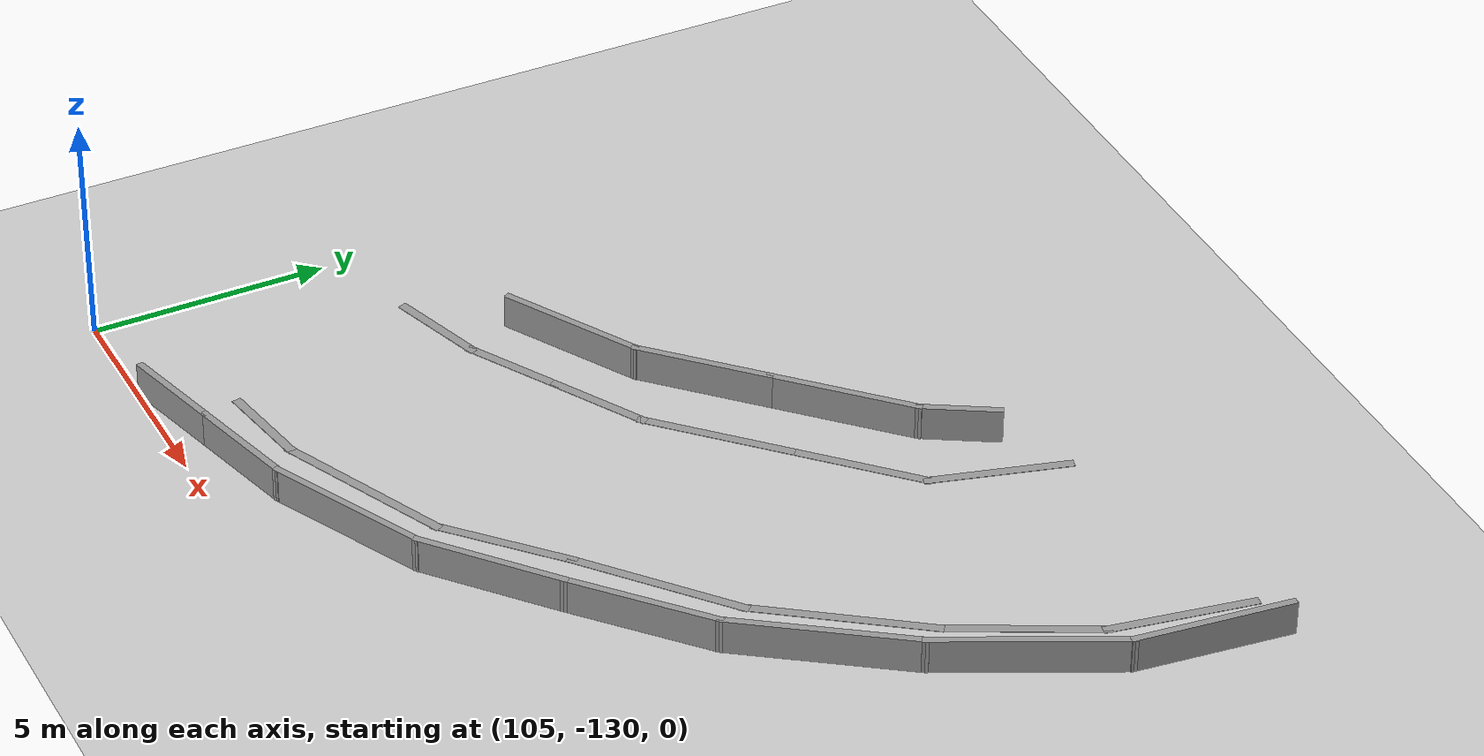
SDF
<sdf version="1.6">
 <world name="default">
  <model name="ground_plane">
   <static>1</static>
   <link name="link">
    <collision name="collision">
     <geometry><plane><normal>0 0 1</normal><size>100 100</size></plane></geometry>
     <surface>
      <contact><collide_bitmask>65535</collide_bitmask></contact>
      <friction><ode><mu>100</mu><mu2>50</mu2></ode></friction>
     </surface>
    </collision>
    <visual name="visual">
     <cast_shadows>0</cast_shadows>
     <geometry><plane><normal>0 0 1</normal><size>100 100</size></plane></geometry>
     <material>
      <script><uri>file://media/materials/scripts/gazebo.material</uri><name>Gazebo/Grey</name></script>
     </material>
    </visual>
   </link>
  </model>
  <model name="GercekDuvarSeritKoyu1">
   <link name="Wall_173">
    <pose>66.9071 49.8209 0 0 -0 2.09434</pose>
    <inertial>
     <mass>1</mass>
     <inertia><ixx>1</ixx><ixy>0</ixy><ixz>0</ixz><iyy>1</iyy><iyz>0</iyz><izz>1</izz></inertia>
    </inertial>
    <visual name="Wall_173_Visual">
     <pose>0 0 0.375 0 -0 0</pose>
     <geometry><box><size>3.25 0.15 0.75</size></box></geometry>
     <material>
      <script><uri>file://media/materials/scripts/gazebo.material</uri><name>Gazebo/Grey</name></script>
      <ambient>0.5 0.5 0.5 1</ambient>
      <shader type="pixel"><normal_map>__default__</normal_map></shader>
      <diffuse>0.7 0.7 0.7 1</diffuse>
      <specular>0.01 0.01 0.01 1</specular>
      <emissive>0 0 0 1</emissive>
     </material>
     <meta><layer>0</layer></meta>
    </visual>
    <collision name="Wall_173_Collision">
     <pose>0 0 0.375 0 -0 0</pose>
     <geometry><box><size>3.25 0.15 0.75</size></box></geometry>
     <surface>
      <friction>
       <ode><mu>1</mu><mu2>1</mu2><fdir1>0 0 0</fdir1><slip1>0</slip1><slip2>0</slip2></ode>
       <torsional>
        <coefficient>1</coefficient>
        <patch_radius>0</patch_radius>
        <surface_radius>0</surface_radius>
        <use_patch_radius>1</use_patch_radius>
        <ode><slip>0</slip></ode>
       </torsional>
      </friction>
      <bounce><restitution_coefficient>0</restitution_coefficient><threshold>1e+06</threshold></bounce>
      <contact>
       <collide_without_contact>0</collide_without_contact>
       <collide_without_contact_bitmask>1</collide_without_contact_bitmask>
       <collide_bitmask>1</collide_bitmask>
       <ode>
        <soft_cfm>0</soft_cfm>
        <soft_erp>0.2</soft_erp>
        <kp>1e+13</kp>
        <kd>1</kd>
        <max_vel>0.01</max_vel>
        <min_depth>0</min_depth>
       </ode>
       <bullet>
        <split_impulse>1</split_impulse>
        <split_impulse_penetration_threshold>-0.01</split_impulse_penetration_threshold>
        <soft_cfm>0</soft_cfm>
        <soft_erp>0.2</soft_erp>
        <kp>1e+13</kp>
        <kd>1</kd>
       </bullet>
      </contact>
     </surface>
    </collision>
   </link>
   <link name="Wall_174">
    <pose>65.1246 52.1709 0 0 -0 2.35619</pose>
    <inertial>
     <mass>1</mass>
     <inertia><ixx>1</ixx><ixy>0</ixy><ixz>0</ixz><iyy>1</iyy><iyz>0</iyz><izz>1</izz></inertia>
    </inertial>
    <visual name="Wall_174_Visual">
     <pose>0 0 0.375 0 -0 0</pose>
     <geometry><box><size>3 0.15 0.75</size></box></geometry>
     <material>
      <script><uri>file://media/materials/scripts/gazebo.material</uri><name>Gazebo/Grey</name></script>
      <ambient>0.5 0.5 0.5 1</ambient>
      <shader type="pixel"><normal_map>__default__</normal_map></shader>
      <diffuse>0.7 0.7 0.7 1</diffuse>
      <specular>0.01 0.01 0.01 1</specular>
      <emissive>0 0 0 1</emissive>
     </material>
     <meta><layer>0</layer></meta>
    </visual>
    <collision name="Wall_174_Collision">
     <pose>0 0 0.375 0 -0 0</pose>
     <geometry><box><size>3 0.15 0.75</size></box></geometry>
     <surface>
      <friction>
       <ode><mu>1</mu><mu2>1</mu2><fdir1>0 0 0</fdir1><slip1>0</slip1><slip2>0</slip2></ode>
       <torsional>
        <coefficient>1</coefficient>
        <patch_radius>0</patch_radius>
        <surface_radius>0</surface_radius>
        <use_patch_radius>1</use_patch_radius>
        <ode><slip>0</slip></ode>
       </torsional>
      </friction>
      <bounce><restitution_coefficient>0</restitution_coefficient><threshold>1e+06</threshold></bounce>
      <contact>
       <collide_without_contact>0</collide_without_contact>
       <collide_without_contact_bitmask>1</collide_without_contact_bitmask>
       <collide_bitmask>1</collide_bitmask>
       <ode>
        <soft_cfm>0</soft_cfm>
        <soft_erp>0.2</soft_erp>
        <kp>1e+13</kp>
        <kd>1</kd>
        <max_vel>0.01</max_vel>
        <min_depth>0</min_depth>
       </ode>
       <bullet>
        <split_impulse>1</split_impulse>
        <split_impulse_penetration_threshold>-0.01</split_impulse_penetration_threshold>
        <soft_cfm>0</soft_cfm>
        <soft_erp>0.2</soft_erp>
        <kp>1e+13</kp>
        <kd>1</kd>
       </bullet>
      </contact>
     </surface>
    </collision>
   </link>
   <link name="Wall_175">
    <pose>63.0211 54.2744 0 0 -0 2.35619</pose>
    <inertial>
     <mass>1</mass>
     <inertia><ixx>1</ixx><ixy>0</ixy><ixz>0</ixz><iyy>1</iyy><iyz>0</iyz><izz>1</izz></inertia>
    </inertial>
    <visual name="Wall_175_Visual">
     <pose>0 0 0.375 0 -0 0</pose>
     <geometry><box><size>3.25 0.15 0.75</size></box></geometry>
     <material>
      <script><uri>file://media/materials/scripts/gazebo.material</uri><name>Gazebo/Grey</name></script>
      <ambient>0.5 0.5 0.5 1</ambient>
      <shader type="pixel"><normal_map>__default__</normal_map></shader>
      <diffuse>0.7 0.7 0.7 1</diffuse>
      <specular>0.01 0.01 0.01 1</specular>
      <emissive>0 0 0 1</emissive>
     </material>
     <meta><layer>0</layer></meta>
    </visual>
    <collision name="Wall_175_Collision">
     <pose>0 0 0.375 0 -0 0</pose>
     <geometry><box><size>3.25 0.15 0.75</size></box></geometry>
     <surface>
      <friction>
       <ode><mu>1</mu><mu2>1</mu2><fdir1>0 0 0</fdir1><slip1>0</slip1><slip2>0</slip2></ode>
       <torsional>
        <coefficient>1</coefficient>
        <patch_radius>0</patch_radius>
        <surface_radius>0</surface_radius>
        <use_patch_radius>1</use_patch_radius>
        <ode><slip>0</slip></ode>
       </torsional>
      </friction>
      <bounce><restitution_coefficient>0</restitution_coefficient><threshold>1e+06</threshold></bounce>
      <contact>
       <collide_without_contact>0</collide_without_contact>
       <collide_without_contact_bitmask>1</collide_without_contact_bitmask>
       <collide_bitmask>1</collide_bitmask>
       <ode>
        <soft_cfm>0</soft_cfm>
        <soft_erp>0.2</soft_erp>
        <kp>1e+13</kp>
        <kd>1</kd>
        <max_vel>0.01</max_vel>
        <min_depth>0</min_depth>
       </ode>
       <bullet>
        <split_impulse>1</split_impulse>
        <split_impulse_penetration_threshold>-0.01</split_impulse_penetration_threshold>
        <soft_cfm>0</soft_cfm>
        <soft_erp>0.2</soft_erp>
        <kp>1e+13</kp>
        <kd>1</kd>
       </bullet>
      </contact>
     </surface>
    </collision>
   </link>
   <link name="Wall_176">
    <pose>61.2321 55.7704 0 0 -0 2.61811</pose>
    <inertial>
     <mass>1</mass>
     <inertia><ixx>1</ixx><ixy>0</ixy><ixz>0</ixz><iyy>1</iyy><iyz>0</iyz><izz>1</izz></inertia>
    </inertial>
    <visual name="Wall_176_Visual">
     <pose>0 0 0.375 0 -0 0</pose>
     <geometry><box><size>1.75 0.15 0.75</size></box></geometry>
     <material>
      <script><uri>file://media/materials/scripts/gazebo.material</uri><name>Gazebo/Grey</name></script>
      <ambient>0.5 0.5 0.5 1</ambient>
      <shader type="pixel"><normal_map>__default__</normal_map></shader>
      <diffuse>0.7 0.7 0.7 1</diffuse>
      <specular>0.01 0.01 0.01 1</specular>
      <emissive>0 0 0 1</emissive>
     </material>
     <meta><layer>0</layer></meta>
    </visual>
    <collision name="Wall_176_Collision">
     <pose>0 0 0.375 0 -0 0</pose>
     <geometry><box><size>1.75 0.15 0.75</size></box></geometry>
     <surface>
      <friction>
       <ode><mu>1</mu><mu2>1</mu2><fdir1>0 0 0</fdir1><slip1>0</slip1><slip2>0</slip2></ode>
       <torsional>
        <coefficient>1</coefficient>
        <patch_radius>0</patch_radius>
        <surface_radius>0</surface_radius>
        <use_patch_radius>1</use_patch_radius>
        <ode><slip>0</slip></ode>
       </torsional>
      </friction>
      <bounce><restitution_coefficient>0</restitution_coefficient><threshold>1e+06</threshold></bounce>
      <contact>
       <collide_without_contact>0</collide_without_contact>
       <collide_without_contact_bitmask>1</collide_without_contact_bitmask>
       <collide_bitmask>1</collide_bitmask>
       <ode>
        <soft_cfm>0</soft_cfm>
        <soft_erp>0.2</soft_erp>
        <kp>1e+13</kp>
        <kd>1</kd>
        <max_vel>0.01</max_vel>
        <min_depth>0</min_depth>
       </ode>
       <bullet>
        <split_impulse>1</split_impulse>
        <split_impulse_penetration_threshold>-0.01</split_impulse_penetration_threshold>
        <soft_cfm>0</soft_cfm>
        <soft_erp>0.2</soft_erp>
        <kp>1e+13</kp>
        <kd>1</kd>
       </bullet>
      </contact>
     </surface>
    </collision>
   </link>
   <link name="Wall_25">
    <pose>74.9781 48.4324 0 0 -0 1.83287</pose>
    <inertial>
     <mass>1</mass>
     <inertia><ixx>1</ixx><ixy>0</ixy><ixz>0</ixz><iyy>1</iyy><iyz>0</iyz><izz>1</izz></inertia>
    </inertial>
    <visual name="Wall_25_Visual">
     <pose>0 0 0.375 0 -0 0</pose>
     <geometry><box><size>2.25 0.15 0.75</size></box></geometry>
     <material>
      <script><uri>file://media/materials/scripts/gazebo.material</uri><name>Gazebo/Grey</name></script>
      <ambient>0.5 0.5 0.5 1</ambient>
      <shader type="pixel"><normal_map>__default__</normal_map></shader>
      <diffuse>0.7 0.7 0.7 1</diffuse>
      <specular>0.01 0.01 0.01 1</specular>
      <emissive>0 0 0 1</emissive>
     </material>
     <meta><layer>0</layer></meta>
    </visual>
    <collision name="Wall_25_Collision">
     <pose>0 0 0.375 0 -0 0</pose>
     <geometry><box><size>2.25 0.15 0.75</size></box></geometry>
     <surface>
      <friction>
       <ode><mu>1</mu><mu2>1</mu2><fdir1>0 0 0</fdir1><slip1>0</slip1><slip2>0</slip2></ode>
       <torsional>
        <coefficient>1</coefficient>
        <patch_radius>0</patch_radius>
        <surface_radius>0</surface_radius>
        <use_patch_radius>1</use_patch_radius>
        <ode><slip>0</slip></ode>
       </torsional>
      </friction>
      <bounce><restitution_coefficient>0</restitution_coefficient><threshold>1e+06</threshold></bounce>
      <contact>
       <collide_without_contact>0</collide_without_contact>
       <collide_without_contact_bitmask>1</collide_without_contact_bitmask>
       <collide_bitmask>1</collide_bitmask>
       <ode>
        <soft_cfm>0</soft_cfm>
        <soft_erp>0.2</soft_erp>
        <kp>1e+13</kp>
        <kd>1</kd>
        <max_vel>0.01</max_vel>
        <min_depth>0</min_depth>
       </ode>
       <bullet>
        <split_impulse>1</split_impulse>
        <split_impulse_penetration_threshold>-0.01</split_impulse_penetration_threshold>
        <soft_cfm>0</soft_cfm>
        <soft_erp>0.2</soft_erp>
        <kp>1e+13</kp>
        <kd>1</kd>
       </bullet>
      </contact>
     </surface>
    </collision>
   </link>
   <link name="Wall_26">
    <pose>74.4021 50.5814 0 0 -0 1.83249</pose>
    <inertial>
     <mass>1</mass>
     <inertia><ixx>1</ixx><ixy>0</ixy><ixz>0</ixz><iyy>1</iyy><iyz>0</iyz><izz>1</izz></inertia>
    </inertial>
    <visual name="Wall_26_Visual">
     <pose>0 0 0.375 0 -0 0</pose>
     <geometry><box><size>2.5 0.15 0.75</size></box></geometry>
     <material>
      <script><uri>file://media/materials/scripts/gazebo.material</uri><name>Gazebo/Grey</name></script>
      <ambient>0.5 0.5 0.5 1</ambient>
      <shader type="pixel"><normal_map>__default__</normal_map></shader>
      <diffuse>0.7 0.7 0.7 1</diffuse>
      <specular>0.01 0.01 0.01 1</specular>
      <emissive>0 0 0 1</emissive>
     </material>
     <meta><layer>0</layer></meta>
    </visual>
    <collision name="Wall_26_Collision">
     <pose>0 0 0.375 0 -0 0</pose>
     <geometry><box><size>2.5 0.15 0.75</size></box></geometry>
     <surface>
      <friction>
       <ode><mu>1</mu><mu2>1</mu2><fdir1>0 0 0</fdir1><slip1>0</slip1><slip2>0</slip2></ode>
       <torsional>
        <coefficient>1</coefficient>
        <patch_radius>0</patch_radius>
        <surface_radius>0</surface_radius>
        <use_patch_radius>1</use_patch_radius>
        <ode><slip>0</slip></ode>
       </torsional>
      </friction>
      <bounce><restitution_coefficient>0</restitution_coefficient><threshold>1e+06</threshold></bounce>
      <contact>
       <collide_without_contact>0</collide_without_contact>
       <collide_without_contact_bitmask>1</collide_without_contact_bitmask>
       <collide_bitmask>1</collide_bitmask>
       <ode>
        <soft_cfm>0</soft_cfm>
        <soft_erp>0.2</soft_erp>
        <kp>1e+13</kp>
        <kd>1</kd>
        <max_vel>0.01</max_vel>
        <min_depth>0</min_depth>
       </ode>
       <bullet>
        <split_impulse>1</split_impulse>
        <split_impulse_penetration_threshold>-0.01</split_impulse_penetration_threshold>
        <soft_cfm>0</soft_cfm>
        <soft_erp>0.2</soft_erp>
        <kp>1e+13</kp>
        <kd>1</kd>
       </bullet>
      </contact>
     </surface>
    </collision>
   </link>
   <link name="Wall_27">
    <pose>73.3136 53.2994 0 0 -0 2.0309</pose>
    <inertial>
     <mass>1</mass>
     <inertia><ixx>1</ixx><ixy>0</ixy><ixz>0</ixz><iyy>1</iyy><iyz>0</iyz><izz>1</izz></inertia>
    </inertial>
    <visual name="Wall_27_Visual">
     <pose>0 0 0.375 0 -0 0</pose>
     <geometry><box><size>3.68334 0.15 0.75</size></box></geometry>
     <material>
      <script><uri>file://media/materials/scripts/gazebo.material</uri><name>Gazebo/Grey</name></script>
      <ambient>0.5 0.5 0.5 1</ambient>
      <shader type="pixel"><normal_map>__default__</normal_map></shader>
      <diffuse>0.7 0.7 0.7 1</diffuse>
      <specular>0.01 0.01 0.01 1</specular>
      <emissive>0 0 0 1</emissive>
     </material>
     <meta><layer>0</layer></meta>
    </visual>
    <collision name="Wall_27_Collision">
     <pose>0 0 0.375 0 -0 0</pose>
     <geometry><box><size>3.68334 0.15 0.75</size></box></geometry>
     <surface>
      <friction>
       <ode><mu>1</mu><mu2>1</mu2><fdir1>0 0 0</fdir1><slip1>0</slip1><slip2>0</slip2></ode>
       <torsional>
        <coefficient>1</coefficient>
        <patch_radius>0</patch_radius>
        <surface_radius>0</surface_radius>
        <use_patch_radius>1</use_patch_radius>
        <ode><slip>0</slip></ode>
       </torsional>
      </friction>
      <bounce><restitution_coefficient>0</restitution_coefficient><threshold>1e+06</threshold></bounce>
      <contact>
       <collide_without_contact>0</collide_without_contact>
       <collide_without_contact_bitmask>1</collide_without_contact_bitmask>
       <collide_bitmask>1</collide_bitmask>
       <ode>
        <soft_cfm>0</soft_cfm>
        <soft_erp>0.2</soft_erp>
        <kp>1e+13</kp>
        <kd>1</kd>
        <max_vel>0.01</max_vel>
        <min_depth>0</min_depth>
       </ode>
       <bullet>
        <split_impulse>1</split_impulse>
        <split_impulse_penetration_threshold>-0.01</split_impulse_penetration_threshold>
        <soft_cfm>0</soft_cfm>
        <soft_erp>0.2</soft_erp>
        <kp>1e+13</kp>
        <kd>1</kd>
       </bullet>
      </contact>
     </surface>
    </collision>
   </link>
   <link name="Wall_273">
    <pose>73.4591 49.4254 0 0 -0 1.74776</pose>
    <visual name="Wall_273_Visual">
     <pose>0 0 0.005 0 -0 0</pose>
     <geometry><box><size>2.11998 0.2 0.01</size></box></geometry>
     <material>
      <script><uri>file://media/materials/scripts/gazebo.material</uri><name>Gazebo/Grey</name></script>
      <ambient>1 1 1 1</ambient>
      <shader type="pixel"/>
     </material>
     <meta><layer>0</layer></meta>
    </visual>
    <collision name="Wall_273_Collision">
     <pose>0 0 0.005 0 -0 0</pose>
     <geometry><box><size>2.11998 0.2 0.01</size></box></geometry>
     <surface>
      <friction>
       <ode><mu>1</mu><mu2>1</mu2><fdir1>0 0 0</fdir1><slip1>0</slip1><slip2>0</slip2></ode>
       <torsional>
        <coefficient>1</coefficient>
        <patch_radius>0</patch_radius>
        <surface_radius>0</surface_radius>
        <use_patch_radius>1</use_patch_radius>
        <ode><slip>0</slip></ode>
       </torsional>
      </friction>
      <bounce><restitution_coefficient>0</restitution_coefficient><threshold>1e+06</threshold></bounce>
      <contact>
       <collide_without_contact>0</collide_without_contact>
       <collide_without_contact_bitmask>1</collide_without_contact_bitmask>
       <collide_bitmask>1</collide_bitmask>
       <ode>
        <soft_cfm>0</soft_cfm>
        <soft_erp>0.2</soft_erp>
        <kp>1e+13</kp>
        <kd>1</kd>
        <max_vel>0.01</max_vel>
        <min_depth>0</min_depth>
       </ode>
       <bullet>
        <split_impulse>1</split_impulse>
        <split_impulse_penetration_threshold>-0.01</split_impulse_penetration_threshold>
        <soft_cfm>0</soft_cfm>
        <soft_erp>0.2</soft_erp>
        <kp>1e+13</kp>
        <kd>1</kd>
       </bullet>
      </contact>
     </surface>
    </collision>
   </link>
   <link name="Wall_274">
    <pose>72.4871 52.1059 0 0 -0 2.00415</pose>
    <visual name="Wall_274_Visual">
     <pose>0 0 0.005 0 -0 0</pose>
     <geometry><box><size>4.02479 0.2 0.01</size></box></geometry>
     <material>
      <script><uri>file://media/materials/scripts/gazebo.material</uri><name>Gazebo/Grey</name></script>
      <ambient>1 1 1 1</ambient>
      <shader type="pixel"/>
     </material>
     <meta><layer>0</layer></meta>
    </visual>
    <collision name="Wall_274_Collision">
     <pose>0 0 0.005 0 -0 0</pose>
     <geometry><box><size>4.02479 0.2 0.01</size></box></geometry>
     <surface>
      <friction>
       <ode><mu>1</mu><mu2>1</mu2><fdir1>0 0 0</fdir1><slip1>0</slip1><slip2>0</slip2></ode>
       <torsional>
        <coefficient>1</coefficient>
        <patch_radius>0</patch_radius>
        <surface_radius>0</surface_radius>
        <use_patch_radius>1</use_patch_radius>
        <ode><slip>0</slip></ode>
       </torsional>
      </friction>
      <bounce><restitution_coefficient>0</restitution_coefficient><threshold>1e+06</threshold></bounce>
      <contact>
       <collide_without_contact>0</collide_without_contact>
       <collide_without_contact_bitmask>1</collide_without_contact_bitmask>
       <collide_bitmask>1</collide_bitmask>
       <ode>
        <soft_cfm>0</soft_cfm>
        <soft_erp>0.2</soft_erp>
        <kp>1e+13</kp>
        <kd>1</kd>
        <max_vel>0.01</max_vel>
        <min_depth>0</min_depth>
       </ode>
       <bullet>
        <split_impulse>1</split_impulse>
        <split_impulse_penetration_threshold>-0.01</split_impulse_penetration_threshold>
        <soft_cfm>0</soft_cfm>
        <soft_erp>0.2</soft_erp>
        <kp>1e+13</kp>
        <kd>1</kd>
       </bullet>
      </contact>
     </surface>
    </collision>
   </link>
   <link name="Wall_275">
    <pose>70.7116 54.8854 0 0 -0 2.32075</pose>
    <visual name="Wall_275_Visual">
     <pose>0 0 0.005 0 -0 0</pose>
     <geometry><box><size>3.05355 0.2 0.01</size></box></geometry>
     <material>
      <script><uri>file://media/materials/scripts/gazebo.material</uri><name>Gazebo/Grey</name></script>
      <ambient>1 1 1 1</ambient>
      <shader type="pixel"/>
     </material>
     <meta><layer>0</layer></meta>
    </visual>
    <collision name="Wall_275_Collision">
     <pose>0 0 0.005 0 -0 0</pose>
     <geometry><box><size>3.05355 0.2 0.01</size></box></geometry>
     <surface>
      <friction>
       <ode><mu>1</mu><mu2>1</mu2><fdir1>0 0 0</fdir1><slip1>0</slip1><slip2>0</slip2></ode>
       <torsional>
        <coefficient>1</coefficient>
        <patch_radius>0</patch_radius>
        <surface_radius>0</surface_radius>
        <use_patch_radius>1</use_patch_radius>
        <ode><slip>0</slip></ode>
       </torsional>
      </friction>
      <bounce><restitution_coefficient>0</restitution_coefficient><threshold>1e+06</threshold></bounce>
      <contact>
       <collide_without_contact>0</collide_without_contact>
       <collide_without_contact_bitmask>1</collide_without_contact_bitmask>
       <collide_bitmask>1</collide_bitmask>
       <ode>
        <soft_cfm>0</soft_cfm>
        <soft_erp>0.2</soft_erp>
        <kp>1e+13</kp>
        <kd>1</kd>
        <max_vel>0.01</max_vel>
        <min_depth>0</min_depth>
       </ode>
       <bullet>
        <split_impulse>1</split_impulse>
        <split_impulse_penetration_threshold>-0.01</split_impulse_penetration_threshold>
        <soft_cfm>0</soft_cfm>
        <soft_erp>0.2</soft_erp>
        <kp>1e+13</kp>
        <kd>1</kd>
       </bullet>
      </contact>
     </surface>
    </collision>
   </link>
   <link name="Wall_276">
    <pose>68.5721 57.2994 0 0 -0 2.27635</pose>
    <visual name="Wall_276_Visual">
     <pose>0 0 0.005 0 -0 0</pose>
     <geometry><box><size>3.79933 0.2 0.01</size></box></geometry>
     <material>
      <script><uri>file://media/materials/scripts/gazebo.material</uri><name>Gazebo/Grey</name></script>
      <ambient>1 1 1 1</ambient>
      <shader type="pixel"/>
     </material>
     <meta><layer>0</layer></meta>
    </visual>
    <collision name="Wall_276_Collision">
     <pose>0 0 0.005 0 -0 0</pose>
     <geometry><box><size>3.79933 0.2 0.01</size></box></geometry>
     <surface>
      <friction>
       <ode><mu>1</mu><mu2>1</mu2><fdir1>0 0 0</fdir1><slip1>0</slip1><slip2>0</slip2></ode>
       <torsional>
        <coefficient>1</coefficient>
        <patch_radius>0</patch_radius>
        <surface_radius>0</surface_radius>
        <use_patch_radius>1</use_patch_radius>
        <ode><slip>0</slip></ode>
       </torsional>
      </friction>
      <bounce><restitution_coefficient>0</restitution_coefficient><threshold>1e+06</threshold></bounce>
      <contact>
       <collide_without_contact>0</collide_without_contact>
       <collide_without_contact_bitmask>1</collide_without_contact_bitmask>
       <collide_bitmask>1</collide_bitmask>
       <ode>
        <soft_cfm>0</soft_cfm>
        <soft_erp>0.2</soft_erp>
        <kp>1e+13</kp>
        <kd>1</kd>
        <max_vel>0.01</max_vel>
        <min_depth>0</min_depth>
       </ode>
       <bullet>
        <split_impulse>1</split_impulse>
        <split_impulse_penetration_threshold>-0.01</split_impulse_penetration_threshold>
        <soft_cfm>0</soft_cfm>
        <soft_erp>0.2</soft_erp>
        <kp>1e+13</kp>
        <kd>1</kd>
       </bullet>
      </contact>
     </surface>
    </collision>
   </link>
   <link name="Wall_277">
    <pose>65.8816 59.7459 0 0 -0 2.52645</pose>
    <visual name="Wall_277_Visual">
     <pose>0 0 0.005 0 -0 0</pose>
     <geometry><box><size>3.9309 0.2 0.01</size></box></geometry>
     <material>
      <script><uri>file://media/materials/scripts/gazebo.material</uri><name>Gazebo/Grey</name></script>
      <ambient>1 1 1 1</ambient>
      <shader type="pixel"/>
     </material>
     <meta><layer>0</layer></meta>
    </visual>
    <collision name="Wall_277_Collision">
     <pose>0 0 0.005 0 -0 0</pose>
     <geometry><box><size>3.9309 0.2 0.01</size></box></geometry>
     <surface>
      <friction>
       <ode><mu>1</mu><mu2>1</mu2><fdir1>0 0 0</fdir1><slip1>0</slip1><slip2>0</slip2></ode>
       <torsional>
        <coefficient>1</coefficient>
        <patch_radius>0</patch_radius>
        <surface_radius>0</surface_radius>
        <use_patch_radius>1</use_patch_radius>
        <ode><slip>0</slip></ode>
       </torsional>
      </friction>
      <bounce><restitution_coefficient>0</restitution_coefficient><threshold>1e+06</threshold></bounce>
      <contact>
       <collide_without_contact>0</collide_without_contact>
       <collide_without_contact_bitmask>1</collide_without_contact_bitmask>
       <collide_bitmask>1</collide_bitmask>
       <ode>
        <soft_cfm>0</soft_cfm>
        <soft_erp>0.2</soft_erp>
        <kp>1e+13</kp>
        <kd>1</kd>
        <max_vel>0.01</max_vel>
        <min_depth>0</min_depth>
       </ode>
       <bullet>
        <split_impulse>1</split_impulse>
        <split_impulse_penetration_threshold>-0.01</split_impulse_penetration_threshold>
        <soft_cfm>0</soft_cfm>
        <soft_erp>0.2</soft_erp>
        <kp>1e+13</kp>
        <kd>1</kd>
       </bullet>
      </contact>
     </surface>
    </collision>
   </link>
   <link name="Wall_278">
    <pose>62.9276 61.5354 0 0 -0 2.6792</pose>
    <visual name="Wall_278_Visual">
     <pose>0 0 0.005 0 -0 0</pose>
     <geometry><box><size>3.39666 0.2 0.01</size></box></geometry>
     <material>
      <script><uri>file://media/materials/scripts/gazebo.material</uri><name>Gazebo/Grey</name></script>
      <ambient>1 1 1 1</ambient>
      <shader type="pixel"/>
     </material>
     <meta><layer>0</layer></meta>
    </visual>
    <collision name="Wall_278_Collision">
     <pose>0 0 0.005 0 -0 0</pose>
     <geometry><box><size>3.39666 0.2 0.01</size></box></geometry>
     <surface>
      <friction>
       <ode><mu>1</mu><mu2>1</mu2><fdir1>0 0 0</fdir1><slip1>0</slip1><slip2>0</slip2></ode>
       <torsional>
        <coefficient>1</coefficient>
        <patch_radius>0</patch_radius>
        <surface_radius>0</surface_radius>
        <use_patch_radius>1</use_patch_radius>
        <ode><slip>0</slip></ode>
       </torsional>
      </friction>
      <bounce><restitution_coefficient>0</restitution_coefficient><threshold>1e+06</threshold></bounce>
      <contact>
       <collide_without_contact>0</collide_without_contact>
       <collide_without_contact_bitmask>1</collide_without_contact_bitmask>
       <collide_bitmask>1</collide_bitmask>
       <ode>
        <soft_cfm>0</soft_cfm>
        <soft_erp>0.2</soft_erp>
        <kp>1e+13</kp>
        <kd>1</kd>
        <max_vel>0.01</max_vel>
        <min_depth>0</min_depth>
       </ode>
       <bullet>
        <split_impulse>1</split_impulse>
        <split_impulse_penetration_threshold>-0.01</split_impulse_penetration_threshold>
        <soft_cfm>0</soft_cfm>
        <soft_erp>0.2</soft_erp>
        <kp>1e+13</kp>
        <kd>1</kd>
       </bullet>
      </contact>
     </surface>
    </collision>
   </link>
   <link name="Wall_279">
    <pose>60.0326 62.4939 0 0 -0 2.9755</pose>
    <visual name="Wall_279_Visual">
     <pose>0 0 0.005 0 -0 0</pose>
     <geometry><box><size>3.17003 0.2 0.01</size></box></geometry>
     <material>
      <script><uri>file://media/materials/scripts/gazebo.material</uri><name>Gazebo/Grey</name></script>
      <ambient>1 1 1 1</ambient>
      <shader type="pixel"/>
     </material>
     <meta><layer>0</layer></meta>
    </visual>
    <collision name="Wall_279_Collision">
     <pose>0 0 0.005 0 -0 0</pose>
     <geometry><box><size>3.17003 0.2 0.01</size></box></geometry>
     <surface>
      <friction>
       <ode><mu>1</mu><mu2>1</mu2><fdir1>0 0 0</fdir1><slip1>0</slip1><slip2>0</slip2></ode>
       <torsional>
        <coefficient>1</coefficient>
        <patch_radius>0</patch_radius>
        <surface_radius>0</surface_radius>
        <use_patch_radius>1</use_patch_radius>
        <ode><slip>0</slip></ode>
       </torsional>
      </friction>
      <bounce><restitution_coefficient>0</restitution_coefficient><threshold>1e+06</threshold></bounce>
      <contact>
       <collide_without_contact>0</collide_without_contact>
       <collide_without_contact_bitmask>1</collide_without_contact_bitmask>
       <collide_bitmask>1</collide_bitmask>
       <ode>
        <soft_cfm>0</soft_cfm>
        <soft_erp>0.2</soft_erp>
        <kp>1e+13</kp>
        <kd>1</kd>
        <max_vel>0.01</max_vel>
        <min_depth>0</min_depth>
       </ode>
       <bullet>
        <split_impulse>1</split_impulse>
        <split_impulse_penetration_threshold>-0.01</split_impulse_penetration_threshold>
        <soft_cfm>0</soft_cfm>
        <soft_erp>0.2</soft_erp>
        <kp>1e+13</kp>
        <kd>1</kd>
       </bullet>
      </contact>
     </surface>
    </collision>
   </link>
   <link name="Wall_28">
    <pose>71.5126 56.0579 0 0 -0 2.28378</pose>
    <inertial>
     <mass>1</mass>
     <inertia><ixx>1</ixx><ixy>0</ixy><ixz>0</ixz><iyy>1</iyy><iyz>0</iyz><izz>1</izz></inertia>
    </inertial>
    <visual name="Wall_28_Visual">
     <pose>0 0 0.375 0 -0 0</pose>
     <geometry><box><size>3.25809 0.15 0.75</size></box></geometry>
     <material>
      <script><uri>file://media/materials/scripts/gazebo.material</uri><name>Gazebo/Grey</name></script>
      <ambient>0.5 0.5 0.5 1</ambient>
      <shader type="pixel"><normal_map>__default__</normal_map></shader>
      <diffuse>0.7 0.7 0.7 1</diffuse>
      <specular>0.01 0.01 0.01 1</specular>
      <emissive>0 0 0 1</emissive>
     </material>
     <meta><layer>0</layer></meta>
    </visual>
    <collision name="Wall_28_Collision">
     <pose>0 0 0.375 0 -0 0</pose>
     <geometry><box><size>3.25809 0.15 0.75</size></box></geometry>
     <surface>
      <friction>
       <ode><mu>1</mu><mu2>1</mu2><fdir1>0 0 0</fdir1><slip1>0</slip1><slip2>0</slip2></ode>
       <torsional>
        <coefficient>1</coefficient>
        <patch_radius>0</patch_radius>
        <surface_radius>0</surface_radius>
        <use_patch_radius>1</use_patch_radius>
        <ode><slip>0</slip></ode>
       </torsional>
      </friction>
      <bounce><restitution_coefficient>0</restitution_coefficient><threshold>1e+06</threshold></bounce>
      <contact>
       <collide_without_contact>0</collide_without_contact>
       <collide_without_contact_bitmask>1</collide_without_contact_bitmask>
       <collide_bitmask>1</collide_bitmask>
       <ode>
        <soft_cfm>0</soft_cfm>
        <soft_erp>0.2</soft_erp>
        <kp>1e+13</kp>
        <kd>1</kd>
        <max_vel>0.01</max_vel>
        <min_depth>0</min_depth>
       </ode>
       <bullet>
        <split_impulse>1</split_impulse>
        <split_impulse_penetration_threshold>-0.01</split_impulse_penetration_threshold>
        <soft_cfm>0</soft_cfm>
        <soft_erp>0.2</soft_erp>
        <kp>1e+13</kp>
        <kd>1</kd>
       </bullet>
      </contact>
     </surface>
    </collision>
   </link>
   <link name="Wall_284">
    <pose>68.1951 49.7919 0 0 -0 2.09863</pose>
    <visual name="Wall_284_Visual">
     <pose>0 0 0.005 0 -0 0</pose>
     <geometry><box><size>2.28485 0.2 0.01</size></box></geometry>
     <material>
      <script><uri>file://media/materials/scripts/gazebo.material</uri><name>Gazebo/Grey</name></script>
      <ambient>1 1 1 1</ambient>
      <shader type="pixel"/>
     </material>
     <meta><layer>0</layer></meta>
    </visual>
    <collision name="Wall_284_Collision">
     <pose>0 0 0.005 0 -0 0</pose>
     <geometry><box><size>2.28485 0.2 0.01</size></box></geometry>
     <surface>
      <friction>
       <ode><mu>1</mu><mu2>1</mu2><fdir1>0 0 0</fdir1><slip1>0</slip1><slip2>0</slip2></ode>
       <torsional>
        <coefficient>1</coefficient>
        <patch_radius>0</patch_radius>
        <surface_radius>0</surface_radius>
        <use_patch_radius>1</use_patch_radius>
        <ode><slip>0</slip></ode>
       </torsional>
      </friction>
      <bounce><restitution_coefficient>0</restitution_coefficient><threshold>1e+06</threshold></bounce>
      <contact>
       <collide_without_contact>0</collide_without_contact>
       <collide_without_contact_bitmask>1</collide_without_contact_bitmask>
       <collide_bitmask>1</collide_bitmask>
       <ode>
        <soft_cfm>0</soft_cfm>
        <soft_erp>0.2</soft_erp>
        <kp>1e+13</kp>
        <kd>1</kd>
        <max_vel>0.01</max_vel>
        <min_depth>0</min_depth>
       </ode>
       <bullet>
        <split_impulse>1</split_impulse>
        <split_impulse_penetration_threshold>-0.01</split_impulse_penetration_threshold>
        <soft_cfm>0</soft_cfm>
        <soft_erp>0.2</soft_erp>
        <kp>1e+13</kp>
        <kd>1</kd>
       </bullet>
      </contact>
     </surface>
    </collision>
   </link>
   <link name="Wall_285">
    <pose>67.1451 51.6019 0 0 -0 2.09431</pose>
    <visual name="Wall_285_Visual">
     <pose>0 0 0.005 0 -0 0</pose>
     <geometry><box><size>2.30013 0.2 0.01</size></box></geometry>
     <material>
      <script><uri>file://media/materials/scripts/gazebo.material</uri><name>Gazebo/Grey</name></script>
      <ambient>1 1 1 1</ambient>
      <shader type="pixel"/>
     </material>
     <meta><layer>0</layer></meta>
    </visual>
    <collision name="Wall_285_Collision">
     <pose>0 0 0.005 0 -0 0</pose>
     <geometry><box><size>2.30013 0.2 0.01</size></box></geometry>
     <surface>
      <friction>
       <ode><mu>1</mu><mu2>1</mu2><fdir1>0 0 0</fdir1><slip1>0</slip1><slip2>0</slip2></ode>
       <torsional>
        <coefficient>1</coefficient>
        <patch_radius>0</patch_radius>
        <surface_radius>0</surface_radius>
        <use_patch_radius>1</use_patch_radius>
        <ode><slip>0</slip></ode>
       </torsional>
      </friction>
      <bounce><restitution_coefficient>0</restitution_coefficient><threshold>1e+06</threshold></bounce>
      <contact>
       <collide_without_contact>0</collide_without_contact>
       <collide_without_contact_bitmask>1</collide_without_contact_bitmask>
       <collide_bitmask>1</collide_bitmask>
       <ode>
        <soft_cfm>0</soft_cfm>
        <soft_erp>0.2</soft_erp>
        <kp>1e+13</kp>
        <kd>1</kd>
        <max_vel>0.01</max_vel>
        <min_depth>0</min_depth>
       </ode>
       <bullet>
        <split_impulse>1</split_impulse>
        <split_impulse_penetration_threshold>-0.01</split_impulse_penetration_threshold>
        <soft_cfm>0</soft_cfm>
        <soft_erp>0.2</soft_erp>
        <kp>1e+13</kp>
        <kd>1</kd>
       </bullet>
      </contact>
     </surface>
    </collision>
   </link>
   <link name="Wall_286">
    <pose>65.5241 53.6074 0 0 -0 2.35619</pose>
    <visual name="Wall_286_Visual">
     <pose>0 0 0.005 0 -0 0</pose>
     <geometry><box><size>3.29977 0.2 0.01</size></box></geometry>
     <material>
      <script><uri>file://media/materials/scripts/gazebo.material</uri><name>Gazebo/Grey</name></script>
      <ambient>1 1 1 1</ambient>
      <shader type="pixel"/>
     </material>
     <meta><layer>0</layer></meta>
    </visual>
    <collision name="Wall_286_Collision">
     <pose>0 0 0.005 0 -0 0</pose>
     <geometry><box><size>3.29977 0.2 0.01</size></box></geometry>
     <surface>
      <friction>
       <ode><mu>1</mu><mu2>1</mu2><fdir1>0 0 0</fdir1><slip1>0</slip1><slip2>0</slip2></ode>
       <torsional>
        <coefficient>1</coefficient>
        <patch_radius>0</patch_radius>
        <surface_radius>0</surface_radius>
        <use_patch_radius>1</use_patch_radius>
        <ode><slip>0</slip></ode>
       </torsional>
      </friction>
      <bounce><restitution_coefficient>0</restitution_coefficient><threshold>1e+06</threshold></bounce>
      <contact>
       <collide_without_contact>0</collide_without_contact>
       <collide_without_contact_bitmask>1</collide_without_contact_bitmask>
       <collide_bitmask>1</collide_bitmask>
       <ode>
        <soft_cfm>0</soft_cfm>
        <soft_erp>0.2</soft_erp>
        <kp>1e+13</kp>
        <kd>1</kd>
        <max_vel>0.01</max_vel>
        <min_depth>0</min_depth>
       </ode>
       <bullet>
        <split_impulse>1</split_impulse>
        <split_impulse_penetration_threshold>-0.01</split_impulse_penetration_threshold>
        <soft_cfm>0</soft_cfm>
        <soft_erp>0.2</soft_erp>
        <kp>1e+13</kp>
        <kd>1</kd>
       </bullet>
      </contact>
     </surface>
    </collision>
   </link>
   <link name="Wall_287">
    <pose>63.4206 55.7109 0 0 -0 2.35619</pose>
    <visual name="Wall_287_Visual">
     <pose>0 0 0.005 0 -0 0</pose>
     <geometry><box><size>3.04982 0.2 0.01</size></box></geometry>
     <material>
      <script><uri>file://media/materials/scripts/gazebo.material</uri><name>Gazebo/Grey</name></script>
      <ambient>1 1 1 1</ambient>
      <shader type="pixel"/>
     </material>
     <meta><layer>0</layer></meta>
    </visual>
    <collision name="Wall_287_Collision">
     <pose>0 0 0.005 0 -0 0</pose>
     <geometry><box><size>3.04982 0.2 0.01</size></box></geometry>
     <surface>
      <friction>
       <ode><mu>1</mu><mu2>1</mu2><fdir1>0 0 0</fdir1><slip1>0</slip1><slip2>0</slip2></ode>
       <torsional>
        <coefficient>1</coefficient>
        <patch_radius>0</patch_radius>
        <surface_radius>0</surface_radius>
        <use_patch_radius>1</use_patch_radius>
        <ode><slip>0</slip></ode>
       </torsional>
      </friction>
      <bounce><restitution_coefficient>0</restitution_coefficient><threshold>1e+06</threshold></bounce>
      <contact>
       <collide_without_contact>0</collide_without_contact>
       <collide_without_contact_bitmask>1</collide_without_contact_bitmask>
       <collide_bitmask>1</collide_bitmask>
       <ode>
        <soft_cfm>0</soft_cfm>
        <soft_erp>0.2</soft_erp>
        <kp>1e+13</kp>
        <kd>1</kd>
        <max_vel>0.01</max_vel>
        <min_depth>0</min_depth>
       </ode>
       <bullet>
        <split_impulse>1</split_impulse>
        <split_impulse_penetration_threshold>-0.01</split_impulse_penetration_threshold>
        <soft_cfm>0</soft_cfm>
        <soft_erp>0.2</soft_erp>
        <kp>1e+13</kp>
        <kd>1</kd>
       </bullet>
      </contact>
     </surface>
    </collision>
   </link>
   <link name="Wall_288">
    <pose>61.0366 57.0874 0 0 -0 2.87968</pose>
    <visual name="Wall_288_Visual">
     <pose>0 0 0.005 0 -0 0</pose>
     <geometry><box><size>3.05006 0.2 0.01</size></box></geometry>
     <material>
      <script><uri>file://media/materials/scripts/gazebo.material</uri><name>Gazebo/Grey</name></script>
      <ambient>1 1 1 1</ambient>
      <shader type="pixel"/>
     </material>
     <meta><layer>0</layer></meta>
    </visual>
    <collision name="Wall_288_Collision">
     <pose>0 0 0.005 0 -0 0</pose>
     <geometry><box><size>3.05006 0.2 0.01</size></box></geometry>
     <surface>
      <friction>
       <ode><mu>1</mu><mu2>1</mu2><fdir1>0 0 0</fdir1><slip1>0</slip1><slip2>0</slip2></ode>
       <torsional>
        <coefficient>1</coefficient>
        <patch_radius>0</patch_radius>
        <surface_radius>0</surface_radius>
        <use_patch_radius>1</use_patch_radius>
        <ode><slip>0</slip></ode>
       </torsional>
      </friction>
      <bounce><restitution_coefficient>0</restitution_coefficient><threshold>1e+06</threshold></bounce>
      <contact>
       <collide_without_contact>0</collide_without_contact>
       <collide_without_contact_bitmask>1</collide_without_contact_bitmask>
       <collide_bitmask>1</collide_bitmask>
       <ode>
        <soft_cfm>0</soft_cfm>
        <soft_erp>0.2</soft_erp>
        <kp>1e+13</kp>
        <kd>1</kd>
        <max_vel>0.01</max_vel>
        <min_depth>0</min_depth>
       </ode>
       <bullet>
        <split_impulse>1</split_impulse>
        <split_impulse_penetration_threshold>-0.01</split_impulse_penetration_threshold>
        <soft_cfm>0</soft_cfm>
        <soft_erp>0.2</soft_erp>
        <kp>1e+13</kp>
        <kd>1</kd>
       </bullet>
      </contact>
     </surface>
    </collision>
   </link>
   <link name="Wall_29">
    <pose>69.4351 58.4089 0 0 -0 2.30504</pose>
    <inertial>
     <mass>1</mass>
     <inertia><ixx>1</ixx><ixy>0</ixy><ixz>0</ixz><iyy>1</iyy><iyz>0</iyz><izz>1</izz></inertia>
    </inertial>
    <visual name="Wall_29_Visual">
     <pose>0 0 0.375 0 -0 0</pose>
     <geometry><box><size>3.31652 0.15 0.75</size></box></geometry>
     <material>
      <script><uri>file://media/materials/scripts/gazebo.material</uri><name>Gazebo/Grey</name></script>
      <ambient>0.5 0.5 0.5 1</ambient>
      <shader type="pixel"><normal_map>__default__</normal_map></shader>
      <diffuse>0.7 0.7 0.7 1</diffuse>
      <specular>0.01 0.01 0.01 1</specular>
      <emissive>0 0 0 1</emissive>
     </material>
     <meta><layer>0</layer></meta>
    </visual>
    <collision name="Wall_29_Collision">
     <pose>0 0 0.375 0 -0 0</pose>
     <geometry><box><size>3.31652 0.15 0.75</size></box></geometry>
     <surface>
      <friction>
       <ode><mu>1</mu><mu2>1</mu2><fdir1>0 0 0</fdir1><slip1>0</slip1><slip2>0</slip2></ode>
       <torsional>
        <coefficient>1</coefficient>
        <patch_radius>0</patch_radius>
        <surface_radius>0</surface_radius>
        <use_patch_radius>1</use_patch_radius>
        <ode><slip>0</slip></ode>
       </torsional>
      </friction>
      <bounce><restitution_coefficient>0</restitution_coefficient><threshold>1e+06</threshold></bounce>
      <contact>
       <collide_without_contact>0</collide_without_contact>
       <collide_without_contact_bitmask>1</collide_without_contact_bitmask>
       <collide_bitmask>1</collide_bitmask>
       <ode>
        <soft_cfm>0</soft_cfm>
        <soft_erp>0.2</soft_erp>
        <kp>1e+13</kp>
        <kd>1</kd>
        <max_vel>0.01</max_vel>
        <min_depth>0</min_depth>
       </ode>
       <bullet>
        <split_impulse>1</split_impulse>
        <split_impulse_penetration_threshold>-0.01</split_impulse_penetration_threshold>
        <soft_cfm>0</soft_cfm>
        <soft_erp>0.2</soft_erp>
        <kp>1e+13</kp>
        <kd>1</kd>
       </bullet>
      </contact>
     </surface>
    </collision>
   </link>
   <link name="Wall_30">
    <pose>66.7776 60.6879 0 0 -0 2.5368</pose>
    <inertial>
     <mass>1</mass>
     <inertia><ixx>1</ixx><ixy>0</ixy><ixz>0</ixz><iyy>1</iyy><iyz>0</iyz><izz>1</izz></inertia>
    </inertial>
    <visual name="Wall_30_Visual">
     <pose>0 0 0.375 0 -0 0</pose>
     <geometry><box><size>4.03122 0.15 0.75</size></box></geometry>
     <material>
      <script><uri>file://media/materials/scripts/gazebo.material</uri><name>Gazebo/Grey</name></script>
      <ambient>0.5 0.5 0.5 1</ambient>
      <shader type="pixel"><normal_map>__default__</normal_map></shader>
      <diffuse>0.7 0.7 0.7 1</diffuse>
      <specular>0.01 0.01 0.01 1</specular>
      <emissive>0 0 0 1</emissive>
     </material>
     <meta><layer>0</layer></meta>
    </visual>
    <collision name="Wall_30_Collision">
     <pose>0 0 0.375 0 -0 0</pose>
     <geometry><box><size>4.03122 0.15 0.75</size></box></geometry>
     <surface>
      <friction>
       <ode><mu>1</mu><mu2>1</mu2><fdir1>0 0 0</fdir1><slip1>0</slip1><slip2>0</slip2></ode>
       <torsional>
        <coefficient>1</coefficient>
        <patch_radius>0</patch_radius>
        <surface_radius>0</surface_radius>
        <use_patch_radius>1</use_patch_radius>
        <ode><slip>0</slip></ode>
       </torsional>
      </friction>
      <bounce><restitution_coefficient>0</restitution_coefficient><threshold>1e+06</threshold></bounce>
      <contact>
       <collide_without_contact>0</collide_without_contact>
       <collide_without_contact_bitmask>1</collide_without_contact_bitmask>
       <collide_bitmask>1</collide_bitmask>
       <ode>
        <soft_cfm>0</soft_cfm>
        <soft_erp>0.2</soft_erp>
        <kp>1e+13</kp>
        <kd>1</kd>
        <max_vel>0.01</max_vel>
        <min_depth>0</min_depth>
       </ode>
       <bullet>
        <split_impulse>1</split_impulse>
        <split_impulse_penetration_threshold>-0.01</split_impulse_penetration_threshold>
        <soft_cfm>0</soft_cfm>
        <soft_erp>0.2</soft_erp>
        <kp>1e+13</kp>
        <kd>1</kd>
       </bullet>
      </contact>
     </surface>
    </collision>
   </link>
   <link name="Wall_31">
    <pose>63.4171 62.6304 0 0 -0 2.69764</pose>
    <inertial>
     <mass>1</mass>
     <inertia><ixx>1</ixx><ixy>0</ixy><ixz>0</ixz><iyy>1</iyy><iyz>0</iyz><izz>1</izz></inertia>
    </inertial>
    <visual name="Wall_31_Visual">
     <pose>0 0 0.375 0 -0 0</pose>
     <geometry><box><size>4.05667 0.15 0.75</size></box></geometry>
     <material>
      <script><uri>file://media/materials/scripts/gazebo.material</uri><name>Gazebo/Grey</name></script>
      <ambient>0.5 0.5 0.5 1</ambient>
      <shader type="pixel"><normal_map>__default__</normal_map></shader>
      <diffuse>0.7 0.7 0.7 1</diffuse>
      <specular>0.01 0.01 0.01 1</specular>
      <emissive>0 0 0 1</emissive>
     </material>
     <meta><layer>0</layer></meta>
    </visual>
    <collision name="Wall_31_Collision">
     <pose>0 0 0.375 0 -0 0</pose>
     <geometry><box><size>4.05667 0.15 0.75</size></box></geometry>
     <surface>
      <friction>
       <ode><mu>1</mu><mu2>1</mu2><fdir1>0 0 0</fdir1><slip1>0</slip1><slip2>0</slip2></ode>
       <torsional>
        <coefficient>1</coefficient>
        <patch_radius>0</patch_radius>
        <surface_radius>0</surface_radius>
        <use_patch_radius>1</use_patch_radius>
        <ode><slip>0</slip></ode>
       </torsional>
      </friction>
      <bounce><restitution_coefficient>0</restitution_coefficient><threshold>1e+06</threshold></bounce>
      <contact>
       <collide_without_contact>0</collide_without_contact>
       <collide_without_contact_bitmask>1</collide_without_contact_bitmask>
       <collide_bitmask>1</collide_bitmask>
       <ode>
        <soft_cfm>0</soft_cfm>
        <soft_erp>0.2</soft_erp>
        <kp>1e+13</kp>
        <kd>1</kd>
        <max_vel>0.01</max_vel>
        <min_depth>0</min_depth>
       </ode>
       <bullet>
        <split_impulse>1</split_impulse>
        <split_impulse_penetration_threshold>-0.01</split_impulse_penetration_threshold>
        <soft_cfm>0</soft_cfm>
        <soft_erp>0.2</soft_erp>
        <kp>1e+13</kp>
        <kd>1</kd>
       </bullet>
      </contact>
     </surface>
    </collision>
   </link>
   <link name="Wall_32">
    <pose>60.0326 63.6414 0 0 -0 3.03585</pose>
    <inertial>
     <mass>1</mass>
     <inertia><ixx>1</ixx><ixy>0</ixy><ixz>0</ixz><iyy>1</iyy><iyz>0</iyz><izz>1</izz></inertia>
    </inertial>
    <visual name="Wall_32_Visual">
     <pose>0 0 0.375 0 -0 0</pose>
     <geometry><box><size>3.4095 0.15 0.75</size></box></geometry>
     <material>
      <script><uri>file://media/materials/scripts/gazebo.material</uri><name>Gazebo/Grey</name></script>
      <ambient>0.5 0.5 0.5 1</ambient>
      <shader type="pixel"><normal_map>__default__</normal_map></shader>
      <diffuse>0.7 0.7 0.7 1</diffuse>
      <specular>0.01 0.01 0.01 1</specular>
      <emissive>0 0 0 1</emissive>
     </material>
     <meta><layer>0</layer></meta>
    </visual>
    <collision name="Wall_32_Collision">
     <pose>0 0 0.375 0 -0 0</pose>
     <geometry><box><size>3.4095 0.15 0.75</size></box></geometry>
     <surface>
      <friction>
       <ode><mu>1</mu><mu2>1</mu2><fdir1>0 0 0</fdir1><slip1>0</slip1><slip2>0</slip2></ode>
       <torsional>
        <coefficient>1</coefficient>
        <patch_radius>0</patch_radius>
        <surface_radius>0</surface_radius>
        <use_patch_radius>1</use_patch_radius>
        <ode><slip>0</slip></ode>
       </torsional>
      </friction>
      <bounce><restitution_coefficient>0</restitution_coefficient><threshold>1e+06</threshold></bounce>
      <contact>
       <collide_without_contact>0</collide_without_contact>
       <collide_without_contact_bitmask>1</collide_without_contact_bitmask>
       <collide_bitmask>1</collide_bitmask>
       <ode>
        <soft_cfm>0</soft_cfm>
        <soft_erp>0.2</soft_erp>
        <kp>1e+13</kp>
        <kd>1</kd>
        <max_vel>0.01</max_vel>
        <min_depth>0</min_depth>
       </ode>
       <bullet>
        <split_impulse>1</split_impulse>
        <split_impulse_penetration_threshold>-0.01</split_impulse_penetration_threshold>
        <soft_cfm>0</soft_cfm>
        <soft_erp>0.2</soft_erp>
        <kp>1e+13</kp>
        <kd>1</kd>
       </bullet>
      </contact>
     </surface>
    </collision>
   </link>
   <link name="Wall_497">
    <pose>69.0356 47.9324 0 0 -0 1.88863</pose>
    <visual name="Wall_497_Visual">
     <pose>0 0 0.005 0 -0 0</pose>
     <geometry><box><size>2.21932 0.2 0.01</size></box></geometry>
     <material>
      <script><uri>file://media/materials/scripts/gazebo.material</uri><name>Gazebo/Grey</name></script>
      <ambient>1 1 1 1</ambient>
      <shader type="pixel"/>
     </material>
     <meta><layer>0</layer></meta>
    </visual>
    <collision name="Wall_497_Collision">
     <pose>0 0 0.005 0 -0 0</pose>
     <geometry><box><size>2.21932 0.2 0.01</size></box></geometry>
     <surface>
      <friction>
       <ode><mu>1</mu><mu2>1</mu2><fdir1>0 0 0</fdir1><slip1>0</slip1><slip2>0</slip2></ode>
       <torsional>
        <coefficient>1</coefficient>
        <patch_radius>0</patch_radius>
        <surface_radius>0</surface_radius>
        <use_patch_radius>1</use_patch_radius>
        <ode><slip>0</slip></ode>
       </torsional>
      </friction>
      <bounce><restitution_coefficient>0</restitution_coefficient><threshold>1e+06</threshold></bounce>
      <contact>
       <collide_without_contact>0</collide_without_contact>
       <collide_without_contact_bitmask>1</collide_without_contact_bitmask>
       <collide_bitmask>1</collide_bitmask>
       <ode>
        <soft_cfm>0</soft_cfm>
        <soft_erp>0.2</soft_erp>
        <kp>1e+13</kp>
        <kd>1</kd>
        <max_vel>0.01</max_vel>
        <min_depth>0</min_depth>
       </ode>
       <bullet>
        <split_impulse>1</split_impulse>
        <split_impulse_penetration_threshold>-0.01</split_impulse_penetration_threshold>
        <soft_cfm>0</soft_cfm>
        <soft_erp>0.2</soft_erp>
        <kp>1e+13</kp>
        <kd>1</kd>
       </bullet>
      </contact>
     </surface>
    </collision>
   </link>
   <static>1</static>
   <pose>59.9324 -54.7034 -0 0 0 -1.5695</pose>
  </model>
 </world>
</sdf>
